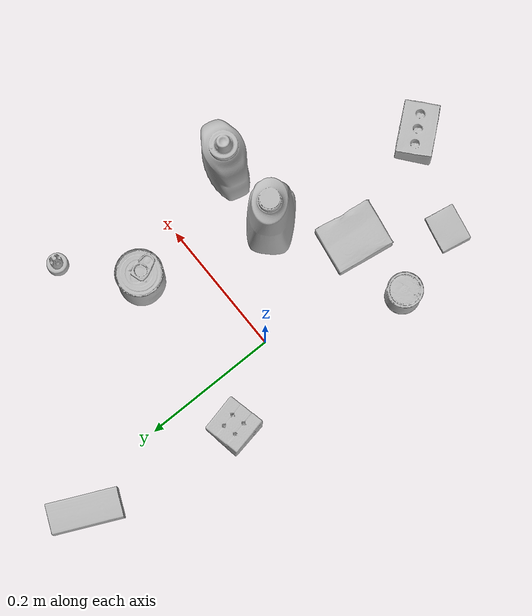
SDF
<sdf version="1.4">
  <world name="default">
    <light name="light1" type="point">
      <pose>0 0 1 0 0 0</pose>
      <diffuse>3 3 3 1</diffuse>
      <specular>3 3 3 1</specular>
    </light>
    <light name="light2" type="point">
      <pose>0 0.5 2 0 0 0</pose>
      <diffuse>1 1 1 1</diffuse>
      <specular>1 1 1 1</specular>
    </light>
    <light name="light3" type="point">
      <pose>0 0.5 2 0 0 0</pose>
      <diffuse>3 3 3 1</diffuse>
      <specular>3 3 3 1</specular>
    </light>
    <scene>
      <ambient>0.7 0.7 0.7</ambient>
    </scene>
    <model name="bottle1">
      <link name="link_bottle1">
        <collision name="default">
          <geometry>
            <mesh>
              <uri>model://bleach_cleanser/collision_meshes/collision.obj</uri>
              <scale>1.0 1.0 1.0</scale>
            </mesh>
          </geometry>
          <surface>
            <friction>
              <ode>
                <mu>0.5</mu>
                <mu2>0.5</mu2>
              </ode>
            </friction>
          <contact>
        <ode>
            <max_vel>0</max_vel>
            <min_depth>0.0001</min_depth>
            <kp>1e8</kp>
        </ode>
    </contact></surface>
        </collision>
        <visual name="default">
          <geometry>
            <mesh>
              <uri>model://bleach_cleanser/visual_meshes/visual.dae</uri>
              <scale>1.0 1.0 1.0</scale>
            </mesh>
          </geometry>
        </visual>
        <inertial>
          <mass>1.1050143241882324</mass>
          <pose>0.00012193183647468686 0.0037838828284293413 -0.02442161738872528 -0.07381670616137478 0.0004201160282461273 -0.006875061809122935</pose>
          <inertia>
            <ixx>0.0053782654</ixx>
            <iyy>0.005011756</iyy>
            <izz>0.00091954356</izz>
            <ixy>0</ixy>
            <ixz>0</ixz>
            <iyz>0</iyz>
          </inertia>
        </inertial>
      </link>
      <pose>0.12812155485153198 -0.1132764145731926 0.12602433562278748 -0.004627969999729993 0.006331476033616098 0.8146958689200696</pose>
    </model>
    <model name="bottle2">
      <link name="link_bottle2">
        <collision name="default">
          <geometry>
            <mesh>
              <uri>model://mustard_bottle/collision_meshes/collision.obj</uri>
              <scale>1.0 1.0 1.0</scale>
            </mesh>
          </geometry>
          <surface>
            <friction>
              <ode>
                <mu>0.5</mu>
                <mu2>0.5</mu2>
              </ode>
            </friction>
          <contact>
        <ode>
            <max_vel>0</max_vel>
            <min_depth>0.0001</min_depth>
            <kp>1e8</kp>
        </ode>
    </contact></surface>
        </collision>
        <visual name="default">
          <geometry>
            <mesh>
              <uri>model://mustard_bottle/visual_meshes/visual.dae</uri>
              <scale>1.0 1.0 1.0</scale>
            </mesh>
          </geometry>
        </visual>
        <inertial>
          <mass>0.622285008430481</mass>
          <pose>0.0005032453336752951 -0.0001564739941386506 -0.0174757931381464 0.0004182326458762318 0.0009465782998157723 0.024853714910341117</pose>
          <inertia>
            <ixx>0.0017280002</ixx>
            <iyy>0.0015161741</iyy>
            <izz>0.00045541534</izz>
            <ixy>0</ixy>
            <ixz>0</ixz>
            <iyz>0</iyz>
          </inertia>
        </inertial>
      </link>
      <pose>0.2286829650402069 -0.11267411708831787 0.09583090245723724 -0.012050733610880592 -0.004889024048006097 -1.8396778182795073</pose>
    </model>
    <model name="toy1">
      <link name="link_toy1">
        <collision name="default">
          <geometry>
            <mesh>
              <uri>model://foam_brick/collision_meshes/collision.obj</uri>
              <scale>1.0 1.0 1.0</scale>
            </mesh>
          </geometry>
          <surface>
            <friction>
              <ode>
                <mu>0.5</mu>
                <mu2>0.5</mu2>
              </ode>
            </friction>
          <contact>
        <ode>
            <max_vel>0</max_vel>
            <min_depth>0.0001</min_depth>
            <kp>1e8</kp>
        </ode>
    </contact></surface>
        </collision>
        <visual name="default">
          <geometry>
            <mesh>
              <uri>model://foam_brick/visual_meshes/visual.dae</uri>
              <scale>1.0 1.0 1.0</scale>
            </mesh>
          </geometry>
        </visual>
        <inertial>
          <mass>0.1664208173751831</mass>
          <pose>-0.00025224717683158815 0.0003458438441157341 -0.00025321010616607964 -0.2940189404221327 0.017274440573450563 -0.0007449871782747126</pose>
          <inertia>
            <ixx>7.269573e-05</ixx>
            <iyy>0.00011606247</iyy>
            <izz>0.000117537464</izz>
            <ixy>0</ixy>
            <ixz>0</ixz>
            <iyz>0</iyz>
          </inertia>
        </inertial>
      </link>
      <pose>0.09414231032133102 -0.3529984951019287 0.02592279762029648 0.013417139052369034 0.004152979070227061 2.272088064230183</pose>
    </model>
    <model name="toy2">
      <link name="link_toy2">
        <collision name="default">
          <geometry>
            <mesh>
              <uri>model://d_toy_airplane/collision_meshes/collision.obj</uri>
              <scale>1.0 1.0 1.0</scale>
            </mesh>
          </geometry>
          <surface>
            <friction>
              <ode>
                <mu>0.5</mu>
                <mu2>0.5</mu2>
              </ode>
            </friction>
          <contact>
        <ode>
            <max_vel>0</max_vel>
            <min_depth>0.0001</min_depth>
            <kp>1e8</kp>
        </ode>
    </contact></surface>
        </collision>
        <visual name="default">
          <geometry>
            <mesh>
              <uri>model://d_toy_airplane/visual_meshes/visual.dae</uri>
              <scale>1.0 1.0 1.0</scale>
            </mesh>
          </geometry>
        </visual>
        <inertial>
          <mass>0.021938346326351166</mass>
          <pose>9.410325583303347e-05 -5.8093231928069144e-05 -0.01172809861600399 0.0002669142468379238 0.0046790018194854816 0.5194488187392164</pose>
          <inertia>
            <ixx>6.5766894e-06</ixx>
            <iyy>6.581649e-06</iyy>
            <izz>1.9855454e-06</izz>
            <ixy>0</ixy>
            <ixz>0</ixz>
            <iyz>0</iyz>
          </inertia>
        </inertial>
      </link>
      <pose>0.26958268880844116 0.15785957872867584 0.0333387553691864 -3.7205130695330305e-05 -0.00017042471492191157 -0.08237985806008562</pose>
    </model>
    <model name="can1">
      <link name="link_can1">
        <collision name="default">
          <geometry>
            <mesh>
              <uri>model://tomato_soup_can/collision_meshes/collision.obj</uri>
              <scale>1.0 1.0 1.0</scale>
            </mesh>
          </geometry>
          <surface>
            <friction>
              <ode>
                <mu>0.5</mu>
                <mu2>0.5</mu2>
              </ode>
            </friction>
          <contact>
        <ode>
            <max_vel>0</max_vel>
            <min_depth>0.0001</min_depth>
            <kp>1e8</kp>
        </ode>
    </contact></surface>
        </collision>
        <visual name="default">
          <geometry>
            <mesh>
              <uri>model://tomato_soup_can/visual_meshes/visual.dae</uri>
              <scale>1.0 1.0 1.0</scale>
            </mesh>
          </geometry>
        </visual>
        <inertial>
          <mass>0.39673706889152527</mass>
          <pose>0.00012652271834667772 0.00010805520287249237 -0.0017973972717300057 0.007020066809275346 0.000422998323222239 -0.009903841103285913</pose>
          <inertia>
            <ixx>0.00043498844</ixx>
            <iyy>0.00043247454</iyy>
            <izz>0.00022545052</izz>
            <ixy>0</ixy>
            <ixz>0</ixz>
            <iyz>0</iyz>
          </inertia>
        </inertial>
      </link>
      <pose>0.17483320832252502 0.08113149553537369 0.05127401277422905 -6.75372418095327e-07 -7.56432325638195e-07 0.011645501226377995</pose>
    </model>
    <model name="can2">
      <link name="link_can2">
        <collision name="default">
          <geometry>
            <mesh>
              <uri>model://master_chef_can/collision_meshes/collision.obj</uri>
              <scale>0.5 0.5 0.5</scale>
            </mesh>
          </geometry>
          <surface>
            <friction>
              <ode>
                <mu>0.5</mu>
                <mu2>0.5</mu2>
              </ode>
            </friction>
          <contact>
        <ode>
            <max_vel>0</max_vel>
            <min_depth>0.0001</min_depth>
            <kp>1e8</kp>
        </ode>
    </contact></surface>
        </collision>
        <visual name="default">
          <geometry>
            <mesh>
              <uri>model://master_chef_can/visual_meshes/visual.dae</uri>
              <scale>0.5 0.5 0.5</scale>
            </mesh>
          </geometry>
        </visual>
        <inertial>
          <mass>0.08835740387439728</mass>
          <pose>-4.6619654312962666e-05 1.3926853625889635e-07 -5.079947004560381e-05 -0.0017995147102642629 0.0006479189020740588 -0.6102650934471076</pose>
          <inertia>
            <ixx>5.1859814e-05</ixx>
            <iyy>5.1478128e-05</iyy>
            <izz>2.8656508e-05</izz>
            <ixy>0</ixy>
            <ixz>0</ixz>
            <iyz>0</iyz>
          </inertia>
        </inertial>
      </link>
      <pose>-0.07161039113998413 -0.19125360250473022 0.03530199080705643 -1.3005225758222908e-06 -9.722591906577437e-07 -2.281410071550183</pose>
    </model>
    <model name="box1">
      <link name="link_box1">
        <collision name="default">
          <geometry>
            <mesh>
              <uri>model://wood_block/collision_meshes/collision.obj</uri>
              <scale>0.5 0.5 0.5</scale>
            </mesh>
          </geometry>
          <surface>
            <friction>
              <ode>
                <mu>0.5</mu>
                <mu2>0.5</mu2>
              </ode>
            </friction>
          <contact>
        <ode>
            <max_vel>0</max_vel>
            <min_depth>0.0001</min_depth>
            <kp>1e8</kp>
        </ode>
    </contact></surface>
        </collision>
        <visual name="default">
          <geometry>
            <mesh>
              <uri>model://wood_block/visual_meshes/visual.dae</uri>
              <scale>0.5 0.5 0.5</scale>
            </mesh>
          </geometry>
        </visual>
        <inertial>
          <mass>0.15377527475357056</mass>
          <pose>-2.9066577553749084e-06 -0.000285404734313488 0.00013204291462898254 -0.05220825990774677 -0.0051926953585221414 -0.0068613782788382646</pose>
          <inertia>
            <ixx>5.1443654e-05</ixx>
            <iyy>0.00016251049</iyy>
            <izz>0.00016190263</izz>
            <ixy>0</ixy>
            <ixz>0</ixz>
            <iyz>0</iyz>
          </inertia>
        </inertial>
      </link>
      <pose>-0.027666307985782623 0.34428635239601135 0.022629259154200554 -0.005208553099178215 0.005718708279244313 1.1373237549168547</pose>
    </model>
    <model name="box2">
      <link name="link_box2">
        <collision name="default">
          <geometry>
            <mesh>
              <uri>model://rubiks_cube/collision_meshes/collision.obj</uri>
              <scale>1.0 1.0 1.0</scale>
            </mesh>
          </geometry>
          <surface>
            <friction>
              <ode>
                <mu>0.5</mu>
                <mu2>0.5</mu2>
              </ode>
            </friction>
          <contact>
        <ode>
            <max_vel>0</max_vel>
            <min_depth>0.0001</min_depth>
            <kp>1e8</kp>
        </ode>
    </contact></surface>
        </collision>
        <visual name="default">
          <geometry>
            <mesh>
              <uri>model://rubiks_cube/visual_meshes/visual.dae</uri>
              <scale>1.0 1.0 1.0</scale>
            </mesh>
          </geometry>
        </visual>
        <inertial>
          <mass>0.2856966555118561</mass>
          <pose>2.6721041649580002e-05 5.2569666877388954e-05 -7.264316082000732e-06 -0.05467209736319516 -0.09813912050272719 -0.034455106160143086</pose>
          <inertia>
            <ixx>0.00015786657</ixx>
            <iyy>0.00015713037</iyy>
            <izz>0.00015917476</izz>
            <ixy>0</ixy>
            <ixz>0</ixz>
            <iyz>0</iyz>
          </inertia>
        </inertial>
      </link>
      <pose>-0.06629963219165802 0.10961024463176727 0.02867899462580681 -1.0843934392448818e-07 -1.636959723772066e-08 0.20678475922661657</pose>
    </model>
    <model name="box3">
      <link name="link_box3">
        <collision name="default">
          <geometry>
            <mesh>
              <uri>model://gelatin_box/collision_meshes/collision.obj</uri>
              <scale>1.0 1.0 1.0</scale>
            </mesh>
          </geometry>
          <surface>
            <friction>
              <ode>
                <mu>0.5</mu>
                <mu2>0.5</mu2>
              </ode>
            </friction>
          <contact>
        <ode>
            <max_vel>0</max_vel>
            <min_depth>0.0001</min_depth>
            <kp>1e8</kp>
        </ode>
    </contact></surface>
        </collision>
        <visual name="default">
          <geometry>
            <mesh>
              <uri>model://gelatin_box/visual_meshes/visual.dae</uri>
              <scale>1.0 1.0 1.0</scale>
            </mesh>
          </geometry>
        </visual>
        <inertial>
          <mass>0.24612535536289215</mass>
          <pose>0.0004319618456065655 0.00011156871914863586 -0.00036403213744051754 -0.0010503719772071295 -0.004755818223732799 0.016440561334178715</pose>
          <inertia>
            <ixx>0.00017374444</ixx>
            <iyy>0.00012410474</iyy>
            <izz>0.00026447774</izz>
            <ixy>0</ixy>
            <ixz>0</ixz>
            <iyz>0</iyz>
          </inertia>
        </inertial>
      </link>
      <pose>0.035231176763772964 -0.19002103805541992 0.015168319456279278 0.005597477283183794 -0.00730452993499834 -0.16381713835166697</pose>
    </model>
    <model name="box4">
      <link name="link_box4">
        <collision name="default">
          <geometry>
            <mesh>
              <uri>model://pudding_box/collision_meshes/collision.obj</uri>
              <scale>0.5 0.5 0.5</scale>
            </mesh>
          </geometry>
          <surface>
            <friction>
              <ode>
                <mu>0.5</mu>
                <mu2>0.5</mu2>
              </ode>
            </friction>
          <contact>
        <ode>
            <max_vel>0</max_vel>
            <min_depth>0.0001</min_depth>
            <kp>1e8</kp>
        </ode>
    </contact></surface>
        </collision>
        <visual name="default">
          <geometry>
            <mesh>
              <uri>model://pudding_box/visual_meshes/visual.dae</uri>
              <scale>0.5 0.5 0.5</scale>
            </mesh>
          </geometry>
        </visual>
        <inertial>
          <mass>0.025328172370791435</mass>
          <pose>0.00024474109522998333 0.00040339428232982755 -0.0002594413817860186 0.00521310085836893 -0.006603797787762854 0.020079828890944847</pose>
          <inertia>
            <ixx>7.15805e-06</ixx>
            <iyy>4.8159864e-06</iyy>
            <izz>1.0570731e-05</izz>
            <ixy>0</ixy>
            <ixz>0</ixz>
            <iyz>0</iyz>
          </inertia>
        </inertial>
      </link>
      <pose>-0.03824583441019058 -0.3007485270500183 0.009862905368208885 0.022348448076455692 -0.011391812206099765 -1.7611792593157778</pose>
    </model>
  <physics type="ode">
      <max_contacts>50</max_contacts>
      <ode>
        <solver>
          <type>quick</type>
          <iters>75</iters>
        </solver>
        <constraints>
          <contact_max_correcting_vel>0</contact_max_correcting_vel>
          <contact_surface_layer>0</contact_surface_layer>
        </constraints>
      </ode>
    </physics></world>
</sdf>
